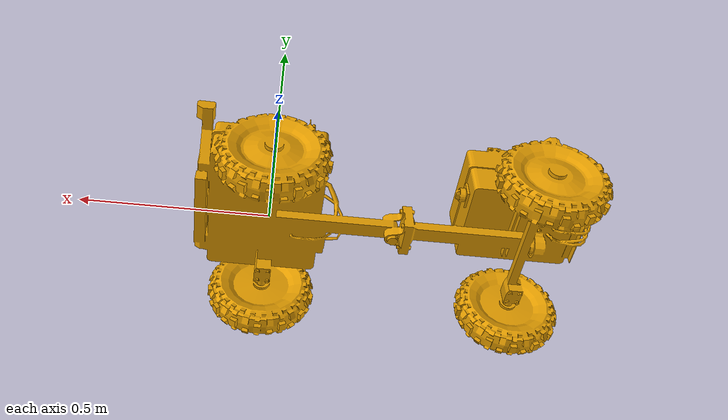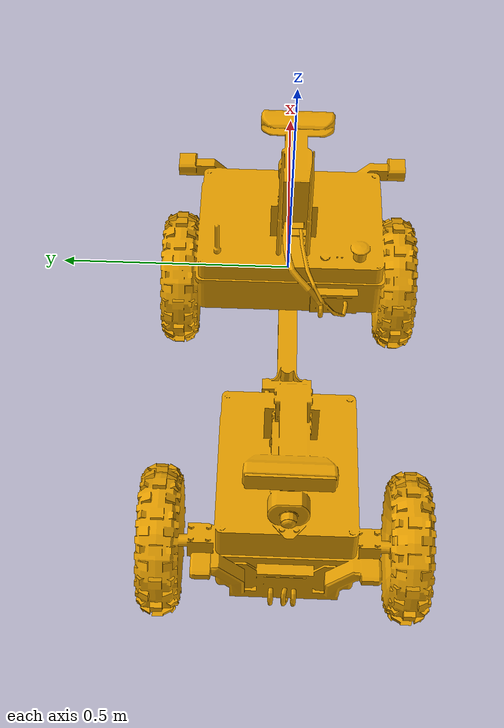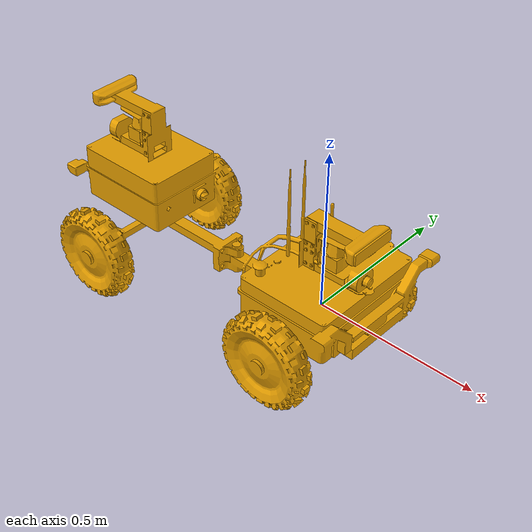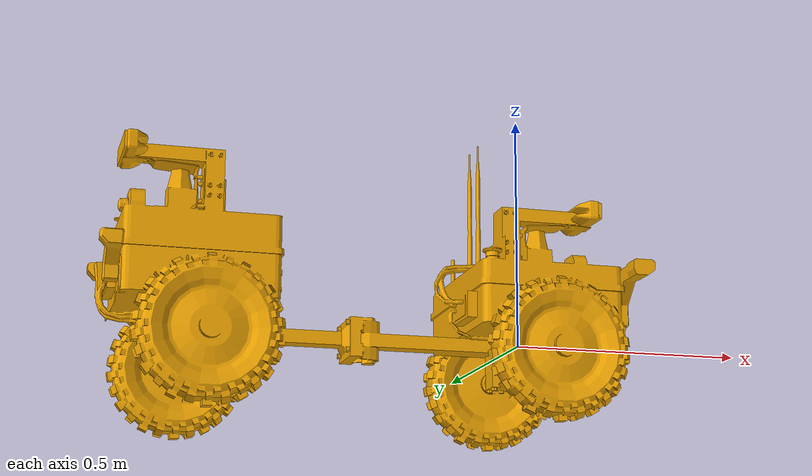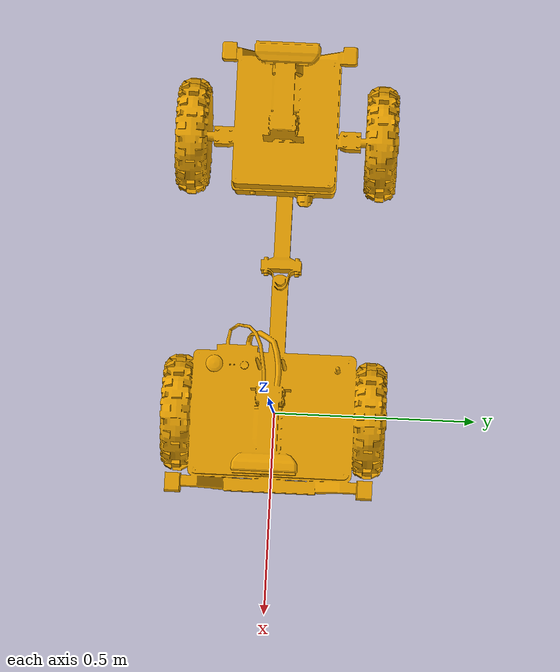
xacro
<?xml version="1.0" encoding="utf-8"?>
<robot name='robotika_kloubak_sensor_config_1' xmlns:xacro='http://ros.org/wiki/xacro'>
  <xacro:arg name="name" default="robotika_kloubak_sensor_config_1"/>
  <xacro:property name="robot_namespace" value="$(arg name)"/>

  <link name='${robot_namespace}/chassis_front'>
    <inertial>
      <origin xyz='-0.05 0 0.28' rpy='0 -0 0'/>
      <mass value='8'/>
      <inertia ixx='0.1119' ixy='0' ixz='0' iyy='0.1286' iyz='0' izz='0.2159'/>
    </inertial>
    <collision name='collision_front_box'>
      <origin xyz='0 0 0.28' rpy='0 -0 0'/>
      <geometry>
        <box size='0.3 0.4 0.16'/>
      </geometry>
    </collision>
    <collision name='collision_bar'>
      <origin xyz='-0.17 0 0.22' rpy='0 -0 0'/>
      <geometry>
        <box size='0.3 0.04 0.04'/>
      </geometry>
    </collision>
    <collision name='collision_joint_upper'>
      <origin xyz='-0.335 0 0.25' rpy='0 -0 0'/>
      <geometry>
        <box size='0.07 0.06 0.02'/>
      </geometry>
    </collision>
    <collision name='collision_joint_bottom'>
      <origin xyz='-0.335 0 0.19' rpy='0 -0 0'/>
      <geometry>
        <box size='0.07 0.06 0.02'/>
      </geometry>
    </collision>
    <collision name='collision_wheel_hinge_left'>
      <origin xyz='0 0.18 0.18' rpy='0 -0 0'/>
      <geometry>
        <box size='0.04 0.06 0.04'/>
      </geometry>
    </collision>
    <collision name='collision_wheel_hinge_right'>
      <origin xyz='0 -0.18 0.18' rpy='0 -0 0'/>
      <geometry>
        <box size='0.04 0.06 0.04'/>
      </geometry>
    </collision>
    <collision name='collision_light_lidar_camera'>
      <origin xyz='0.05 0 0.4325' rpy='0 -0 0'/>
      <geometry>
        <box size='0.2 0.15 0.145'/>
      </geometry>
    </collision>
    <collision name='collision_depth_camera_front'>
      <origin xyz='0.165 0 0.31' rpy='0 -0 0'/>
      <geometry>
        <box size='0.03 0.2 0.06'/>
      </geometry>
    </collision>
    <visual name='visual_chassis'>
      <origin xyz='-0.33 0 -0.19' rpy='0 -0 0'/>
      <geometry>
        <mesh filename='package://robotika_kloubak_sensor_config_3/meshes/k2.dae' scale='1 1 1'/>
      </geometry>
    </visual>
  </link>
  <sensor name='imu_sensor_front' update_rate='50'>
    <parent link='${robot_namespace}/chassis_front'/>
    <origin xyz='0 0 0' rpy='0 -0 0'/>
  </sensor>
  <sensor name='magnetometer_front' update_rate='50'>
    <parent link='${robot_namespace}/chassis_front'/>
    <origin xyz='0 0 0' rpy='0 -0 0'/>
  </sensor>
  <sensor name='air_pressure' update_rate='20'>
    <parent link='${robot_namespace}/chassis_front'/>
    <origin xyz='0 0 0' rpy='0 -0 0'/>
  </sensor>
  <sensor name='lidar_front' update_rate='15'>
    <parent link='${robot_namespace}/chassis_front'/>
    <origin xyz='0.04 0 0.235' rpy='0 -0 0'/>
  </sensor>
  <sensor name='camera_front' update_rate='10'>
    <parent link='${robot_namespace}/chassis_front'/>
    <origin xyz='0.15 0 0.192' rpy='0 -0 0'/>
    <camera>
      <image width='1024' height='768' format='R8G8B8' hfov='3.072' near='0.01' far='300' />
    </camera>
  </sensor>
  <sensor name='depth_camera_front' update_rate='20'>
    <parent link='${robot_namespace}/chassis_front'/>
    <origin xyz='0.18 0 0.113' rpy='0 -0 0'/>
    <camera>
      <image width='640' height='360' format='R8G8B8' hfov='1.5184' near='0.01' far='300' />
    </camera>
  </sensor>
  <link name='${robot_namespace}/chassis_back'>
    <inertial>
      <origin xyz='-0.325 0 0.096' rpy='0 -0 0'/>
      <mass value='7.2'/>
      <inertia ixx='0.0468' ixy='0' ixz='0' iyy='0.1117' iyz='0' izz='0.1228'/>
    </inertial>
    <collision name='collision_back_box'>
      <origin xyz='-0.35 0 0.11' rpy='0 -0 0'/>
      <geometry>
        <box size='0.34 0.24 0.18'/>
      </geometry>
    </collision>
    <collision name='collision_bar'>
      <origin xyz='-0.225 0 0' rpy='0 -0 0'/>
      <geometry>
        <box size='0.45 0.04 0.04'/>
      </geometry>
    </collision>
    <collision name='collision_light_lidar_camera'>
      <origin xyz='-0.42 0 0.2725' rpy='0 -0 0'/>
      <geometry>
        <box size='0.2 0.15 0.145'/>
      </geometry>
    </collision>
    <collision name='collision_depth_camera_back'>
      <origin xyz='-0.535 0 0.09' rpy='0 -0 0'/>
      <geometry>
        <box size='0.03 0.2 0.06'/>
      </geometry>
    </collision>
  </link>
  <sensor name='imu_sensor_back' update_rate='50'>
    <parent link='${robot_namespace}/chassis_back'/>
    <origin xyz='0 0 0' rpy='0 -0 0'/>
  </sensor>
  <sensor name='magnetometer_back' update_rate='50'>
    <parent link='${robot_namespace}/chassis_back'/>
    <origin xyz='0 0 0' rpy='0 -0 0'/>
  </sensor>
  <sensor name='lidar_back' update_rate='15'>
    <parent link='${robot_namespace}/chassis_back'/>
    <origin xyz='-0.06 0 0.295' rpy='0 -0 -3.14159'/>
  </sensor>
  <sensor name='camera_back' update_rate='10'>
    <parent link='${robot_namespace}/chassis_back'/>
    <origin xyz='-0.17 0 0.252' rpy='0 -0 -3.14159'/>
    <camera>
      <image width='1024' height='768' format='R8G8B8' hfov='3.072' near='0.01' far='300' />
    </camera>
  </sensor>
  <sensor name='depth_camera_back' update_rate='20'>
    <parent link='${robot_namespace}/chassis_back'/>
    <origin xyz='-0.2 0 0.113' rpy='0 -0 -3.14159'/>
    <camera>
      <image width='640' height='360' format='R8G8B8' hfov='1.5184' near='0.01' far='300' />
    </camera>
  </sensor>
  <link name='${robot_namespace}/axle_back'>
    <inertial>
      <origin xyz='0 0 0' rpy='0 -0 0'/>
      <mass value='0.8'/>
      <inertia ixx='0.0119' ixy='0' ixz='0' iyy='0.00021' iyz='0' izz='0.0119'/>
    </inertial>
    <collision name='collision'>
      <origin xyz='0 0 0' rpy='0 -0 0'/>
      <geometry>
        <box size='0.04 0.42 0.04'/>
      </geometry>
    </collision>
  </link>
  <link name='${robot_namespace}/front_left_wheel'>
    <inertial>
      <origin xyz='0 0 0' rpy='0 -0 0'/>
      <mass value='3.5'/>
      <inertia ixx='0.0145' ixy='0' ixz='0' iyy='0.0252' iyz='0' izz='0.0145'/>
    </inertial>
    <collision name='collision'>
      <origin xyz='0 0 0' rpy='-1.5708 0 0'/>
      <geometry>
        <cylinder radius='0.15' length='0.08'/>
      </geometry>
    </collision>
  </link>
  <link name='${robot_namespace}/front_right_wheel'>
    <inertial>
      <origin xyz='0 0 0' rpy='0 -0 0'/>
      <mass value='3.5'/>
      <inertia ixx='0.0145' ixy='0' ixz='0' iyy='0.0252' iyz='0' izz='0.0145'/>
    </inertial>
    <collision name='collision'>
      <origin xyz='0 0 0' rpy='1.5708 -0 0'/>
      <geometry>
        <cylinder radius='0.15' length='0.08'/>
      </geometry>
    </collision>
  </link>
  <link name='${robot_namespace}/rear_left_wheel'>
    <inertial>
      <origin xyz='0 0 0' rpy='0 -0 0'/>
      <mass value='3.5'/>
      <inertia ixx='0.0145' ixy='0' ixz='0' iyy='0.0252' iyz='0' izz='0.0145'/>
    </inertial>
    <collision name='collision'>
      <origin xyz='0 0 0' rpy='-1.5708 0 0'/>
      <geometry>
        <cylinder radius='0.15' length='0.08'/>
      </geometry>
    </collision>
  </link>
  <link name='${robot_namespace}/rear_right_wheel'>
    <inertial>
      <origin xyz='0 0 0' rpy='0 -0 0'/>
      <mass value='3.5'/>
      <inertia ixx='0.0145' ixy='0' ixz='0' iyy='0.0252' iyz='0' izz='0.0145'/>
    </inertial>
    <collision name='collision'>
      <origin xyz='0 0 0' rpy='1.5708 -0 0'/>
      <geometry>
        <cylinder radius='0.15' length='0.08'/>
      </geometry>
    </collision>
  </link>
  <joint name='front_left_wheel_joint' type='revolute'>
    <origin xyz='0 0.25 0.18' rpy='0 -0 0'/>
    <parent link='${robot_namespace}/chassis_front'/>
    <child link='${robot_namespace}/front_left_wheel'/>
    <axis xyz='0 1 0'/>
    <limit lower='-1.79769e+308' upper='1.79769e+308' effort='10' velocity='13.333'/>
  </joint>
  <joint name='front_right_wheel_joint' type='revolute'>
    <origin xyz='0 -0.25 0.18' rpy='0 -0 0'/>
    <parent link='${robot_namespace}/chassis_front'/>
    <child link='${robot_namespace}/front_right_wheel'/>
    <axis xyz='0 1 0'/>
    <limit lower='-1.79769e+308' upper='1.79769e+308' effort='10' velocity='13.333'/>
  </joint>
  <joint name='rear_left_wheel_joint' type='revolute'>
    <origin xyz='-0.7 0.25 0.18' rpy='0 -0 0'/>
    <parent link='${robot_namespace}/axle_back'/>
    <child link='${robot_namespace}/rear_left_wheel'/>
    <axis xyz='0 1 0'/>
    <limit lower='-1.79769e+308' upper='1.79769e+308' effort='10' velocity='13.333'/>
  </joint>
  <joint name='rear_right_wheel_joint' type='revolute'>
    <origin xyz='-0.7 -0.25 0.18' rpy='0 -0 0'/>
    <parent link='${robot_namespace}/axle_back'/>
    <child link='${robot_namespace}/rear_right_wheel'/>
    <axis xyz='0 1 0'/>
    <limit lower='-1.79769e+308' upper='1.79769e+308' effort='10' velocity='13.333'/>
  </joint>
  <joint name='main_joint' type='revolute'>
    <origin xyz='-0.35 0 0.22' rpy='0 -0 0'/>
    <parent link='${robot_namespace}/chassis_front'/>
    <child link='${robot_namespace}/chassis_back'/>
    <axis xyz='0 0 1'/>
    <limit lower='-1.222' upper='1.222' effort='-1' velocity='-1'/>
  </joint>
  <joint name='axle_joint' type='revolute'>
    <origin xyz='-0.7 0 0.18' rpy='0 -0 0'/>
    <parent link='${robot_namespace}/chassis_back'/>
    <child link='${robot_namespace}/axle_back'/>
    <axis xyz='1 0 0'/>
    <limit lower='-0.436' upper='0.436' effort='-1' velocity='-1'/>
  </joint>
</robot>
